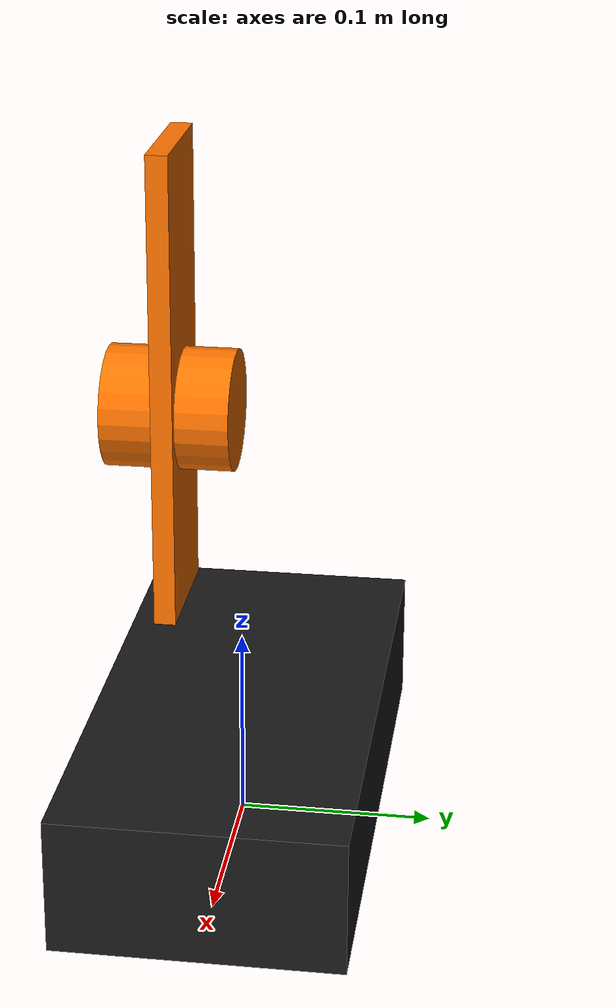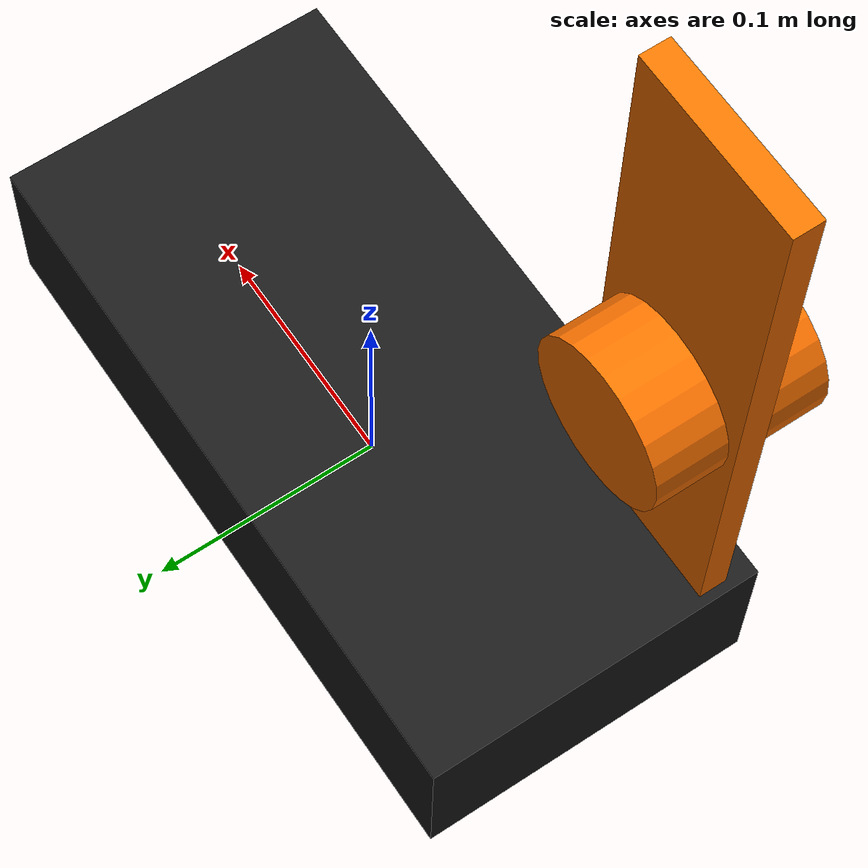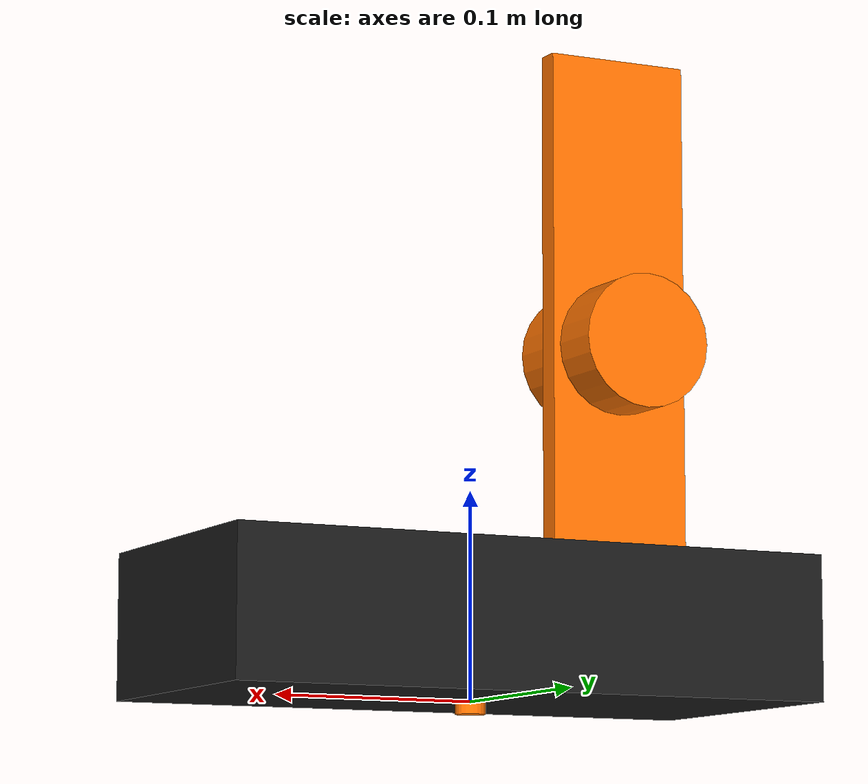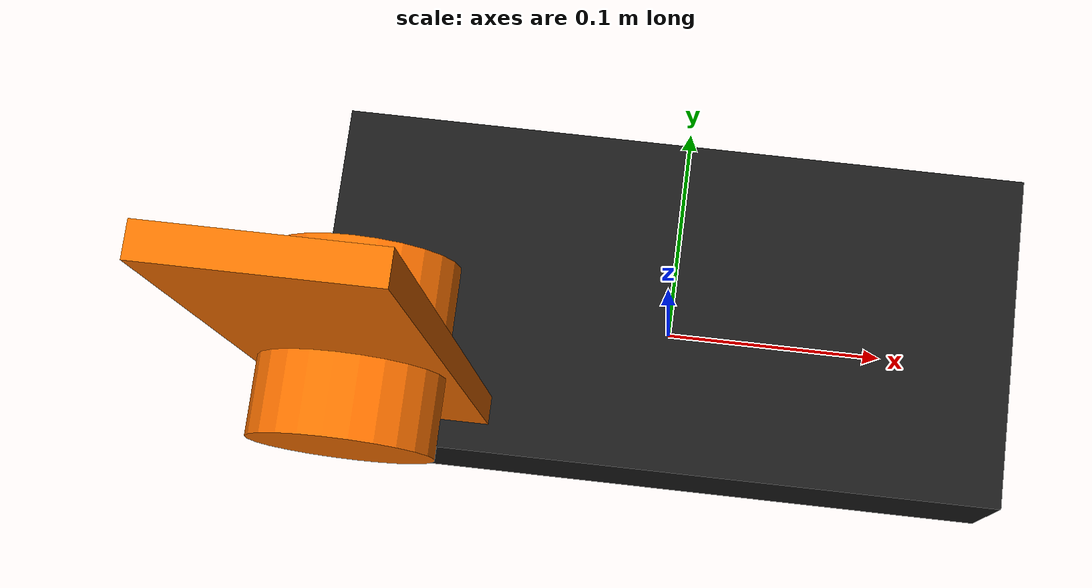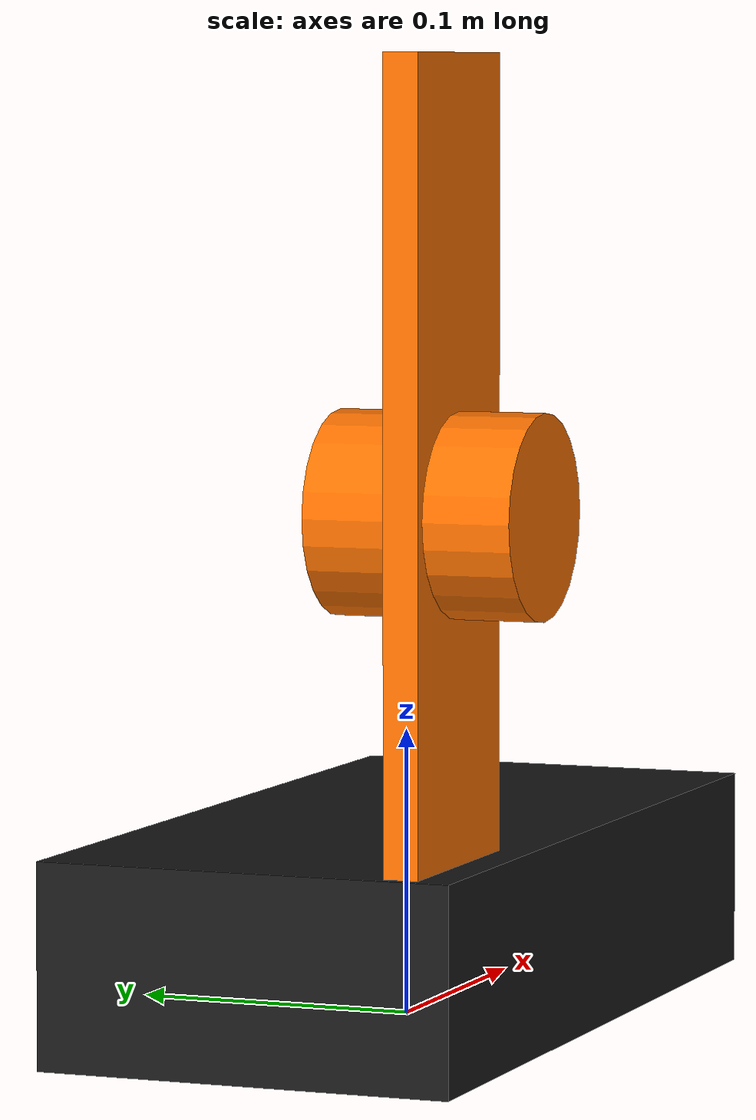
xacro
<?xml version="1.0"?>

<robot name="scanner" xmlns:xacro="http://www.w3.org/1999/XSL/Transform">

    <!-- main link -->
    <link name="world"/>
    <joint name="fixed" type="fixed">
        <parent link="world"/>
        <child link="base_link"/>
    </joint>

    <!--base-->
    <link name="base_link">
        <collision>
            <origin rpy="0 0 0" xyz="0 0 0"/>
            <geometry>
                <box size="0.298 0.148 0.07"/>
            </geometry>
        </collision>
        <visual>
            <origin rpy="0 0 0" xyz="0 0 ${0.07/2}"/>
            <geometry>
                <box size="0.3 0.145 0.07"/>
            </geometry>
            <material name="black">
                <color rgba="0.1 0.1 0.1 1"/>
            </material>
        </visual>
        <inertial>
            <origin rpy="0 0 0" xyz="0 0 0"/>
            <mass value="20"/>
            <inertia
                    ixx="0.1" ixy="0.1" ixz="0.1"
                    iyy="0.1" iyz="0.1"
                    izz="0.1"/>
        </inertial>
    </link>

    <!--lidar stand-->
    <link name="lidar_stand">
        <collision>
            <geometry>
                <box size="0.075 0.012 0.3"/>
            </geometry>
            <material name="orange">
                <color rgba="1 0.45 0 1"/>
            </material>
            <origin rpy="0 0 0" xyz="0 0 0"/>
        </collision>
        <visual>
            <geometry>
                <box size="0.075 0.012 0.3"/>
            </geometry>
            <material name="orange">
                <color rgba="1 0.45 0 1"/>
            </material>
            <origin rpy="0 0 0" xyz="0 0 0"/>
        </visual>
        <inertial>
            <origin rpy="0 0 0" xyz="0 0 0"/>
            <mass value="2"/>
            <inertia
                    ixx="0.1" ixy="0.1" ixz="0.1"
                    iyy="0.1" iyz="0.1"
                    izz="0.1"/>
        </inertial>
    </link>

    <joint name="base_to_lidar_stand" type="fixed">
        <origin xyz="-${0.298/2 - 0.075/2 -0.003} -${0.145/2 - 0.018} ${0.07/2 + 0.3/2}" rpy="0 0 0"/>
        <parent link="base_link"/>
        <child link="lidar_stand"/>
    </joint>

    <!--lidar-->
    <link name="lidar">
        <collision>
            <geometry>
                <cylinder length="0.071" radius="0.034"/>
            </geometry>
            <material name="orange"/>
            <origin rpy="-${pi/2} 0 0" xyz="0 0 0"/>
        </collision>
        <visual>
            <geometry>
                <cylinder length="0.071" radius="0.034"/>
            </geometry>
            <material name="orange"/>
            <origin rpy="-${pi/2} 0 0" xyz="0 0 0"/>
        </visual>
        <inertial>
            <origin rpy="0 0 0" xyz="0 0 0"/>
            <mass value="1.2"/>
            <inertia
                    ixx="0.1" ixy="0.1" ixz="0.1"
                    iyy="0.1" iyz="0.1"
                    izz="0.1"/>
        </inertial>
    </link>

    <joint name="lidar_stand_to_lidar" type="fixed">
        <origin xyz="0 0 0" rpy="0 0 0"/>
        <parent link="lidar_stand"/>
        <child link="lidar"/>
    </joint>

    <!--plate-->
    <link name="plate">
        <collision>
            <geometry>
                <cylinder length="0.012" radius="${0.0146/2}"/>
            </geometry>
            <material name="orange"/>
            <origin rpy="0 0 0" xyz="0 0 0"/>
        </collision>
        <visual>
            <geometry>
                <cylinder length="0.012" radius="${0.0146/2}"/>
            </geometry>
            <material name="orange"/>
            <origin rpy="0 0 0" xyz="0 0 0"/>
        </visual>
        <inertial>
            <origin rpy="0 0 0" xyz="0 0 0"/>
            <mass value="1"/>
            <inertia
                    ixx="0.1" ixy="0.1" ixz="0.1"
                    iyy="0.1" iyz="0.1"
                    izz="0.1"/>
        </inertial>
    </link>

    <joint name="base_link_to_plate" type="fixed">
        <origin xyz="0 0 0" rpy="0 0 0"/>
        <parent link="base_link"/>
        <child link="plate"/>
    </joint>

    <transmission name="base_link_to_plate_trans">
        <type>transmission_interface/SimpleTransmission</type>
        <joint name="base_link_to_plate">
            <hardwareInterface>hardware_interface/EffortJointInterface</hardwareInterface>
        </joint>
        <actuator name="motor_actuator">
            <mechanicalReduction>50</mechanicalReduction>
            <hardwareInterface>hardware_interface/EffortJointInterface</hardwareInterface>
        </actuator>
    </transmission>

    <!--scan_object-->
    <link name="scan_object">

    </link>

    <joint name="plate_to_scan_object" type="fixed">
        <origin xyz="0 0 0" rpy="0 0 0"/>
        <parent link="plate"/>
        <child link="scan_object"/>
    </joint>

</robot>
